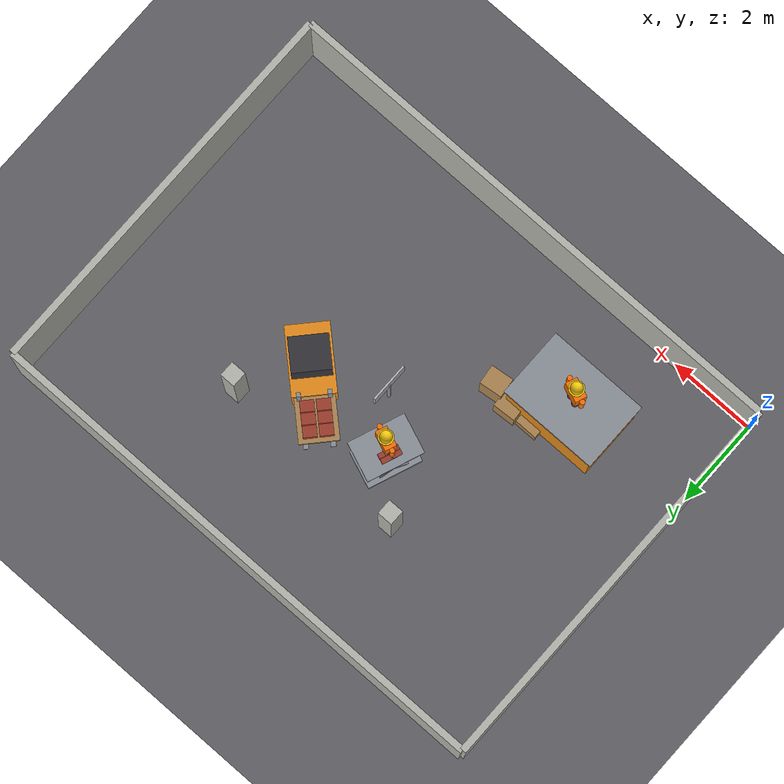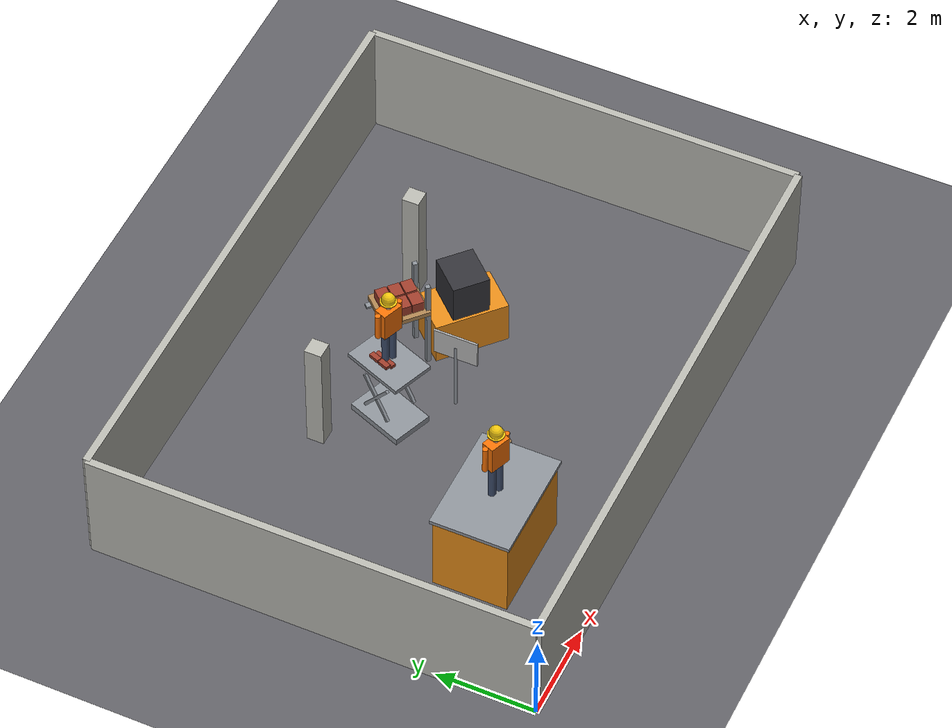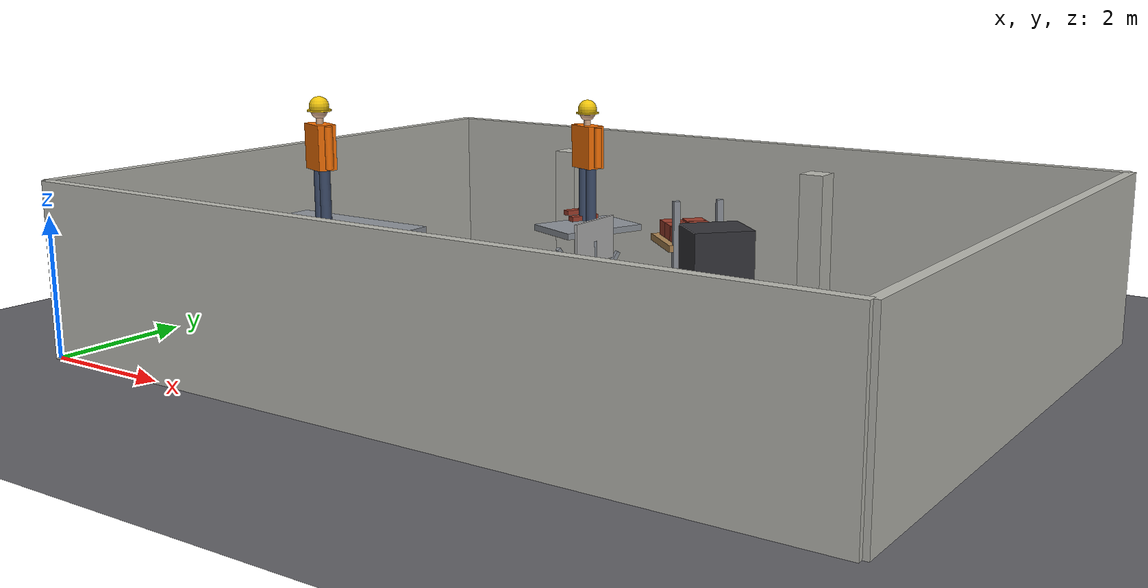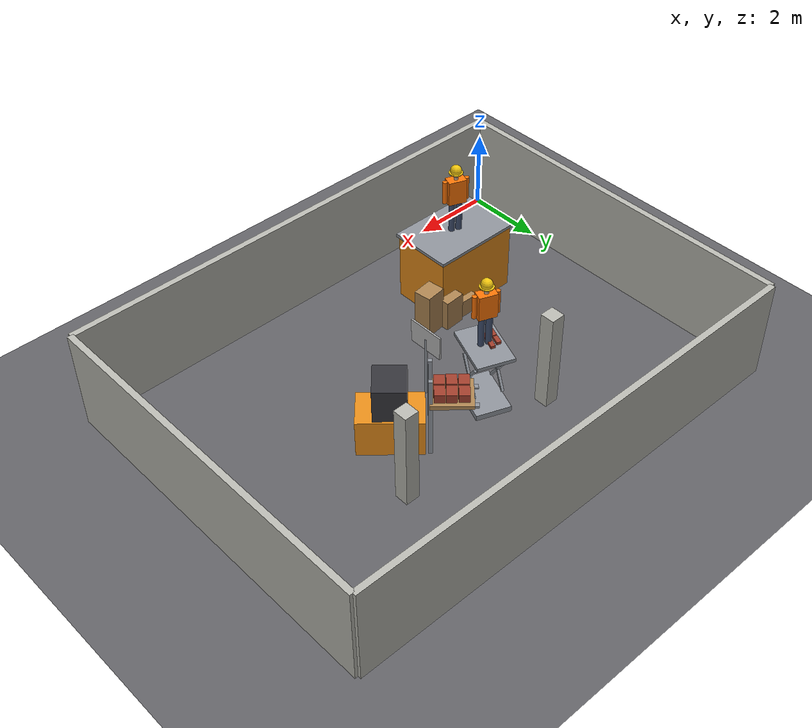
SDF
<sdf version="1.6">
 <world name="construction_lab_C">
  <model name="ground">
   <static>1</static>
   <link name="ground_link">
    <collision name="ground_col">
     <geometry><plane><normal>0 0 1</normal><size>60 60</size></plane></geometry>
     <surface><friction><ode><mu>0.9</mu><mu2>0.9</mu2></ode></friction></surface>
    </collision>
    <visual name="ground_vis">
     <geometry><plane><normal>0 0 1</normal><size>60 60</size></plane></geometry>
     <material><ambient>0.30 0.30 0.32 1</ambient><diffuse>0.38 0.38 0.40 1</diffuse></material>
    </visual>
   </link>
  </model>
  <model name="lab_shell">
   <static>1</static>
   <link name="wall_n">
    <pose>6 9 1.25 0 0 0</pose>
    <gravity>0</gravity>
    <collision name="wall_n_col"><geometry><box><size>12 0.15 2.5</size></box></geometry></collision>
    <visual name="wall_n_vis">
     <geometry><box><size>12 0.15 2.5</size></box></geometry>
     <material>
      <ambient>0.72 0.72 0.69 1</ambient>
      <diffuse>0.72 0.72 0.69 1</diffuse>
      <specular>0.1 0.1 0.1 1</specular>
     </material>
    </visual>
   </link>
   <link name="wall_s">
    <pose>6 0 1.25 0 0 0</pose>
    <gravity>0</gravity>
    <collision name="wall_s_col"><geometry><box><size>12 0.15 2.5</size></box></geometry></collision>
    <visual name="wall_s_vis">
     <geometry><box><size>12 0.15 2.5</size></box></geometry>
     <material>
      <ambient>0.72 0.72 0.69 1</ambient>
      <diffuse>0.72 0.72 0.69 1</diffuse>
      <specular>0.1 0.1 0.1 1</specular>
     </material>
    </visual>
   </link>
   <link name="wall_e">
    <pose>12 4.5 1.25 0 0 0</pose>
    <gravity>0</gravity>
    <collision name="wall_e_col"><geometry><box><size>0.15 9 2.5</size></box></geometry></collision>
    <visual name="wall_e_vis">
     <geometry><box><size>0.15 9 2.5</size></box></geometry>
     <material>
      <ambient>0.72 0.72 0.69 1</ambient>
      <diffuse>0.72 0.72 0.69 1</diffuse>
      <specular>0.1 0.1 0.1 1</specular>
     </material>
    </visual>
   </link>
   <link name="wall_w">
    <pose>0 4.5 1.25 0 0 0</pose>
    <gravity>0</gravity>
    <collision name="wall_w_col"><geometry><box><size>0.15 9 2.5</size></box></geometry></collision>
    <visual name="wall_w_vis">
     <geometry><box><size>0.15 9 2.5</size></box></geometry>
     <material>
      <ambient>0.72 0.72 0.69 1</ambient>
      <diffuse>0.72 0.72 0.69 1</diffuse>
      <specular>0.1 0.1 0.1 1</specular>
     </material>
    </visual>
   </link>
   <link name="column_0">
    <pose>4.2 6.4 1.25 0 0 0</pose>
    <gravity>0</gravity>
    <collision name="column_0_col"><geometry><box><size>0.35 0.35 2.5</size></box></geometry></collision>
    <visual name="column_0_vis">
     <geometry><box><size>0.35 0.35 2.5</size></box></geometry>
     <material>
      <ambient>0.72 0.72 0.69 1</ambient>
      <diffuse>0.72 0.72 0.69 1</diffuse>
      <specular>0.1 0.1 0.1 1</specular>
     </material>
    </visual>
   </link>
   <link name="column_1">
    <pose>8.4 6.4 1.25 0 0 0</pose>
    <gravity>0</gravity>
    <collision name="column_1_col"><geometry><box><size>0.35 0.35 2.5</size></box></geometry></collision>
    <visual name="column_1_vis">
     <geometry><box><size>0.35 0.35 2.5</size></box></geometry>
     <material>
      <ambient>0.72 0.72 0.69 1</ambient>
      <diffuse>0.72 0.72 0.69 1</diffuse>
      <specular>0.1 0.1 0.1 1</specular>
     </material>
    </visual>
   </link>
  </model>
  <model name="safety_signs">
   <static>1</static>
   <link name="SGN_C1_sign">
    <pose>6 4.4 1.6 0 0 3.1416</pose>
    <gravity>0</gravity>
    <collision name="SGN_C1_sign_col"><geometry><box><size>0.04 0.90 0.60</size></box></geometry></collision>
    <visual name="SGN_C1_sign_vis">
     <geometry><box><size>0.04 0.90 0.60</size></box></geometry>
     <material>
      <script>
       <uri>model://materials/scripts</uri>
       <uri>model://materials/textures</uri>
       <name>Go2Sim/SGN_C1</name>
      </script>
     </material>
    </visual>
   </link>
   <link name="SGN_C1_post">
    <pose>6 4.4 0.8 0 0 0</pose>
    <gravity>0</gravity>
    <collision name="SGN_C1_post_col">
     <geometry><cylinder><radius>0.035</radius><length>1.6</length></cylinder></geometry>
    </collision>
    <visual name="SGN_C1_post_vis">
     <geometry><cylinder><radius>0.035</radius><length>1.6</length></cylinder></geometry>
     <material>
      <ambient>0.55 0.57 0.6 1</ambient>
      <diffuse>0.55 0.57 0.6 1</diffuse>
      <specular>0.1 0.1 0.1 1</specular>
     </material>
    </visual>
   </link>
  </model>
  <model name="hazard_C1">
   <static>1</static>
   <link name="hC1_large_machine_base">
    <pose>3 2.2 0.875 0 0 0</pose>
    <gravity>0</gravity>
    <collision name="hC1_large_machine_base_col">
     <geometry><box><size>2.2 1.5 1.75</size></box></geometry>
    </collision>
    <visual name="hC1_large_machine_base_vis">
     <geometry><box><size>2.2 1.5 1.75</size></box></geometry>
     <material>
      <ambient>0.9 0.55 0.1 1</ambient>
      <diffuse>0.9 0.55 0.1 1</diffuse>
      <specular>0.1 0.1 0.1 1</specular>
     </material>
    </visual>
   </link>
   <link name="hC1_large_machine_deck">
    <pose>3 2.2 1.79 0 0 0</pose>
    <gravity>0</gravity>
    <collision name="hC1_large_machine_deck_col">
     <geometry><box><size>2.3 1.6 0.08</size></box></geometry>
    </collision>
    <visual name="hC1_large_machine_deck_vis">
     <geometry><box><size>2.3 1.6 0.08</size></box></geometry>
     <material>
      <ambient>0.55 0.57 0.6 1</ambient>
      <diffuse>0.55 0.57 0.6 1</diffuse>
      <specular>0.1 0.1 0.1 1</specular>
     </material>
    </visual>
   </link>
   <link name="hC1_worker_on_machine_leg_l">
    <pose>2.91612 2.23261 2.23 0 0 0</pose>
    <gravity>0</gravity>
    <collision name="hC1_worker_on_machine_leg_l_col">
     <geometry><cylinder><radius>0.075</radius><length>0.8</length></cylinder></geometry>
    </collision>
    <visual name="hC1_worker_on_machine_leg_l_vis">
     <geometry><cylinder><radius>0.075</radius><length>0.8</length></cylinder></geometry>
     <material>
      <ambient>0.24 0.3 0.42 1</ambient>
      <diffuse>0.24 0.3 0.42 1</diffuse>
      <specular>0.1 0.1 0.1 1</specular>
     </material>
    </visual>
   </link>
   <link name="hC1_worker_on_machine_leg_r">
    <pose>3.08388 2.16739 2.23 0 0 0</pose>
    <gravity>0</gravity>
    <collision name="hC1_worker_on_machine_leg_r_col">
     <geometry><cylinder><radius>0.075</radius><length>0.8</length></cylinder></geometry>
    </collision>
    <visual name="hC1_worker_on_machine_leg_r_vis">
     <geometry><cylinder><radius>0.075</radius><length>0.8</length></cylinder></geometry>
     <material>
      <ambient>0.24 0.3 0.42 1</ambient>
      <diffuse>0.24 0.3 0.42 1</diffuse>
      <specular>0.1 0.1 0.1 1</specular>
     </material>
    </visual>
   </link>
   <link name="hC1_worker_on_machine_torso">
    <pose>3 2.2 2.94 0 0 1.2</pose>
    <gravity>0</gravity>
    <collision name="hC1_worker_on_machine_torso_col">
     <geometry><box><size>0.26 0.44 0.62</size></box></geometry>
    </collision>
    <visual name="hC1_worker_on_machine_torso_vis">
     <geometry><box><size>0.26 0.44 0.62</size></box></geometry>
     <material>
      <ambient>0.98 0.45 0.02 1</ambient>
      <diffuse>0.98 0.45 0.02 1</diffuse>
      <specular>0.1 0.1 0.1 1</specular>
     </material>
    </visual>
   </link>
   <link name="hC1_worker_on_machine_arm0">
    <pose>3.25165 2.10216 2.95 0 0 0</pose>
    <gravity>0</gravity>
    <collision name="hC1_worker_on_machine_arm0_col">
     <geometry><cylinder><radius>0.055</radius><length>0.58</length></cylinder></geometry>
    </collision>
    <visual name="hC1_worker_on_machine_arm0_vis">
     <geometry><cylinder><radius>0.055</radius><length>0.58</length></cylinder></geometry>
     <material>
      <ambient>0.98 0.45 0.02 1</ambient>
      <diffuse>0.98 0.45 0.02 1</diffuse>
      <specular>0.1 0.1 0.1 1</specular>
     </material>
    </visual>
   </link>
   <link name="hC1_worker_on_machine_arm1">
    <pose>2.74835 2.29784 2.95 0 0 0</pose>
    <gravity>0</gravity>
    <collision name="hC1_worker_on_machine_arm1_col">
     <geometry><cylinder><radius>0.055</radius><length>0.58</length></cylinder></geometry>
    </collision>
    <visual name="hC1_worker_on_machine_arm1_vis">
     <geometry><cylinder><radius>0.055</radius><length>0.58</length></cylinder></geometry>
     <material>
      <ambient>0.98 0.45 0.02 1</ambient>
      <diffuse>0.98 0.45 0.02 1</diffuse>
      <specular>0.1 0.1 0.1 1</specular>
     </material>
    </visual>
   </link>
   <link name="hC1_worker_on_machine_neck">
    <pose>3 2.2 3.29 0 0 0</pose>
    <gravity>0</gravity>
    <collision name="hC1_worker_on_machine_neck_col">
     <geometry><cylinder><radius>0.05</radius><length>0.09</length></cylinder></geometry>
    </collision>
    <visual name="hC1_worker_on_machine_neck_vis">
     <geometry><cylinder><radius>0.05</radius><length>0.09</length></cylinder></geometry>
     <material>
      <ambient>0.85 0.68 0.55 1</ambient>
      <diffuse>0.85 0.68 0.55 1</diffuse>
      <specular>0.1 0.1 0.1 1</specular>
     </material>
    </visual>
   </link>
   <link name="hC1_worker_on_machine_head">
    <pose>3 2.2 3.43 0 0 0</pose>
    <gravity>0</gravity>
    <collision name="hC1_worker_on_machine_head_col">
     <geometry><sphere><radius>0.115</radius></sphere></geometry>
    </collision>
    <visual name="hC1_worker_on_machine_head_vis">
     <geometry><sphere><radius>0.115</radius></sphere></geometry>
     <material>
      <ambient>0.85 0.68 0.55 1</ambient>
      <diffuse>0.85 0.68 0.55 1</diffuse>
      <specular>0.1 0.1 0.1 1</specular>
     </material>
    </visual>
   </link>
   <link name="hC1_worker_on_machine_hat">
    <pose>3 2.2 3.485 0 0 0</pose>
    <gravity>0</gravity>
    <collision name="hC1_worker_on_machine_hat_col">
     <geometry><sphere><radius>0.135</radius></sphere></geometry>
    </collision>
    <visual name="hC1_worker_on_machine_hat_vis">
     <geometry><sphere><radius>0.135</radius></sphere></geometry>
     <material>
      <ambient>0.95 0.78 0.05 1</ambient>
      <diffuse>0.95 0.78 0.05 1</diffuse>
      <specular>0.1 0.1 0.1 1</specular>
     </material>
    </visual>
   </link>
   <link name="hC1_worker_on_machine_brim">
    <pose>3 2.2 3.43 0 0 0</pose>
    <gravity>0</gravity>
    <collision name="hC1_worker_on_machine_brim_col">
     <geometry><cylinder><radius>0.165</radius><length>0.02</length></cylinder></geometry>
    </collision>
    <visual name="hC1_worker_on_machine_brim_vis">
     <geometry><cylinder><radius>0.165</radius><length>0.02</length></cylinder></geometry>
     <material>
      <ambient>0.95 0.78 0.05 1</ambient>
      <diffuse>0.95 0.78 0.05 1</diffuse>
      <specular>0.1 0.1 0.1 1</specular>
     </material>
    </visual>
   </link>
  </model>
  <model name="hazard_C2">
   <static>1</static>
   <link name="hC2_lift_table_base">
    <pose>5.2 5.4 0.07 0 0 1.2</pose>
    <gravity>0</gravity>
    <collision name="hC2_lift_table_base_col">
     <geometry><box><size>1.25 0.85 0.14</size></box></geometry>
    </collision>
    <visual name="hC2_lift_table_base_vis">
     <geometry><box><size>1.25 0.85 0.14</size></box></geometry>
     <material>
      <ambient>0.55 0.57 0.6 1</ambient>
      <diffuse>0.55 0.57 0.6 1</diffuse>
      <specular>0.1 0.1 0.1 1</specular>
     </material>
    </visual>
   </link>
   <link name="hC2_lift_table_sc00">
    <pose>5.51689 5.2768 0.775 0 0.95 1.2</pose>
    <gravity>0</gravity>
    <collision name="hC2_lift_table_sc00_col">
     <geometry><box><size>1.05 0.06 0.06</size></box></geometry>
    </collision>
    <visual name="hC2_lift_table_sc00_vis">
     <geometry><box><size>1.05 0.06 0.06</size></box></geometry>
     <material>
      <ambient>0.55 0.57 0.6 1</ambient>
      <diffuse>0.55 0.57 0.6 1</diffuse>
      <specular>0.1 0.1 0.1 1</specular>
     </material>
    </visual>
   </link>
   <link name="hC2_lift_table_sc01">
    <pose>5.51689 5.2768 0.775 0 -0.95 1.2</pose>
    <gravity>0</gravity>
    <collision name="hC2_lift_table_sc01_col">
     <geometry><box><size>1.05 0.06 0.06</size></box></geometry>
    </collision>
    <visual name="hC2_lift_table_sc01_vis">
     <geometry><box><size>1.05 0.06 0.06</size></box></geometry>
     <material>
      <ambient>0.55 0.57 0.6 1</ambient>
      <diffuse>0.55 0.57 0.6 1</diffuse>
      <specular>0.1 0.1 0.1 1</specular>
     </material>
    </visual>
   </link>
   <link name="hC2_lift_table_sc10">
    <pose>4.88311 5.5232 0.775 0 0.95 1.2</pose>
    <gravity>0</gravity>
    <collision name="hC2_lift_table_sc10_col">
     <geometry><box><size>1.05 0.06 0.06</size></box></geometry>
    </collision>
    <visual name="hC2_lift_table_sc10_vis">
     <geometry><box><size>1.05 0.06 0.06</size></box></geometry>
     <material>
      <ambient>0.55 0.57 0.6 1</ambient>
      <diffuse>0.55 0.57 0.6 1</diffuse>
      <specular>0.1 0.1 0.1 1</specular>
     </material>
    </visual>
   </link>
   <link name="hC2_lift_table_sc11">
    <pose>4.88311 5.5232 0.775 0 -0.95 1.2</pose>
    <gravity>0</gravity>
    <collision name="hC2_lift_table_sc11_col">
     <geometry><box><size>1.05 0.06 0.06</size></box></geometry>
    </collision>
    <visual name="hC2_lift_table_sc11_vis">
     <geometry><box><size>1.05 0.06 0.06</size></box></geometry>
     <material>
      <ambient>0.55 0.57 0.6 1</ambient>
      <diffuse>0.55 0.57 0.6 1</diffuse>
      <specular>0.1 0.1 0.1 1</specular>
     </material>
    </visual>
   </link>
   <link name="hC2_lift_table_platform">
    <pose>5.2 5.4 1.55 0 0 1.2</pose>
    <gravity>0</gravity>
    <collision name="hC2_lift_table_platform_col">
     <geometry><box><size>1.3 0.9 0.09</size></box></geometry>
    </collision>
    <visual name="hC2_lift_table_platform_vis">
     <geometry><box><size>1.3 0.9 0.09</size></box></geometry>
     <material>
      <ambient>0.55 0.57 0.6 1</ambient>
      <diffuse>0.55 0.57 0.6 1</diffuse>
      <specular>0.1 0.1 0.1 1</specular>
     </material>
    </visual>
   </link>
   <link name="hC2_worker_on_lift_leg_l">
    <pose>5.11612 5.43261 2.04 0 0 0</pose>
    <gravity>0</gravity>
    <collision name="hC2_worker_on_lift_leg_l_col">
     <geometry><cylinder><radius>0.075</radius><length>0.8</length></cylinder></geometry>
    </collision>
    <visual name="hC2_worker_on_lift_leg_l_vis">
     <geometry><cylinder><radius>0.075</radius><length>0.8</length></cylinder></geometry>
     <material>
      <ambient>0.24 0.3 0.42 1</ambient>
      <diffuse>0.24 0.3 0.42 1</diffuse>
      <specular>0.1 0.1 0.1 1</specular>
     </material>
    </visual>
   </link>
   <link name="hC2_worker_on_lift_leg_r">
    <pose>5.28388 5.36739 2.04 0 0 0</pose>
    <gravity>0</gravity>
    <collision name="hC2_worker_on_lift_leg_r_col">
     <geometry><cylinder><radius>0.075</radius><length>0.8</length></cylinder></geometry>
    </collision>
    <visual name="hC2_worker_on_lift_leg_r_vis">
     <geometry><cylinder><radius>0.075</radius><length>0.8</length></cylinder></geometry>
     <material>
      <ambient>0.24 0.3 0.42 1</ambient>
      <diffuse>0.24 0.3 0.42 1</diffuse>
      <specular>0.1 0.1 0.1 1</specular>
     </material>
    </visual>
   </link>
   <link name="hC2_worker_on_lift_torso">
    <pose>5.2 5.4 2.75 0 0 1.2</pose>
    <gravity>0</gravity>
    <collision name="hC2_worker_on_lift_torso_col">
     <geometry><box><size>0.26 0.44 0.62</size></box></geometry>
    </collision>
    <visual name="hC2_worker_on_lift_torso_vis">
     <geometry><box><size>0.26 0.44 0.62</size></box></geometry>
     <material>
      <ambient>0.98 0.45 0.02 1</ambient>
      <diffuse>0.98 0.45 0.02 1</diffuse>
      <specular>0.1 0.1 0.1 1</specular>
     </material>
    </visual>
   </link>
   <link name="hC2_worker_on_lift_arm0">
    <pose>5.45165 5.30216 2.76 0 0 0</pose>
    <gravity>0</gravity>
    <collision name="hC2_worker_on_lift_arm0_col">
     <geometry><cylinder><radius>0.055</radius><length>0.58</length></cylinder></geometry>
    </collision>
    <visual name="hC2_worker_on_lift_arm0_vis">
     <geometry><cylinder><radius>0.055</radius><length>0.58</length></cylinder></geometry>
     <material>
      <ambient>0.98 0.45 0.02 1</ambient>
      <diffuse>0.98 0.45 0.02 1</diffuse>
      <specular>0.1 0.1 0.1 1</specular>
     </material>
    </visual>
   </link>
   <link name="hC2_worker_on_lift_arm1">
    <pose>4.94835 5.49784 2.76 0 0 0</pose>
    <gravity>0</gravity>
    <collision name="hC2_worker_on_lift_arm1_col">
     <geometry><cylinder><radius>0.055</radius><length>0.58</length></cylinder></geometry>
    </collision>
    <visual name="hC2_worker_on_lift_arm1_vis">
     <geometry><cylinder><radius>0.055</radius><length>0.58</length></cylinder></geometry>
     <material>
      <ambient>0.98 0.45 0.02 1</ambient>
      <diffuse>0.98 0.45 0.02 1</diffuse>
      <specular>0.1 0.1 0.1 1</specular>
     </material>
    </visual>
   </link>
   <link name="hC2_worker_on_lift_neck">
    <pose>5.2 5.4 3.1 0 0 0</pose>
    <gravity>0</gravity>
    <collision name="hC2_worker_on_lift_neck_col">
     <geometry><cylinder><radius>0.05</radius><length>0.09</length></cylinder></geometry>
    </collision>
    <visual name="hC2_worker_on_lift_neck_vis">
     <geometry><cylinder><radius>0.05</radius><length>0.09</length></cylinder></geometry>
     <material>
      <ambient>0.85 0.68 0.55 1</ambient>
      <diffuse>0.85 0.68 0.55 1</diffuse>
      <specular>0.1 0.1 0.1 1</specular>
     </material>
    </visual>
   </link>
   <link name="hC2_worker_on_lift_head">
    <pose>5.2 5.4 3.24 0 0 0</pose>
    <gravity>0</gravity>
    <collision name="hC2_worker_on_lift_head_col">
     <geometry><sphere><radius>0.115</radius></sphere></geometry>
    </collision>
    <visual name="hC2_worker_on_lift_head_vis">
     <geometry><sphere><radius>0.115</radius></sphere></geometry>
     <material>
      <ambient>0.85 0.68 0.55 1</ambient>
      <diffuse>0.85 0.68 0.55 1</diffuse>
      <specular>0.1 0.1 0.1 1</specular>
     </material>
    </visual>
   </link>
   <link name="hC2_worker_on_lift_hat">
    <pose>5.2 5.4 3.295 0 0 0</pose>
    <gravity>0</gravity>
    <collision name="hC2_worker_on_lift_hat_col">
     <geometry><sphere><radius>0.135</radius></sphere></geometry>
    </collision>
    <visual name="hC2_worker_on_lift_hat_vis">
     <geometry><sphere><radius>0.135</radius></sphere></geometry>
     <material>
      <ambient>0.95 0.78 0.05 1</ambient>
      <diffuse>0.95 0.78 0.05 1</diffuse>
      <specular>0.1 0.1 0.1 1</specular>
     </material>
    </visual>
   </link>
   <link name="hC2_worker_on_lift_brim">
    <pose>5.2 5.4 3.24 0 0 0</pose>
    <gravity>0</gravity>
    <collision name="hC2_worker_on_lift_brim_col">
     <geometry><cylinder><radius>0.165</radius><length>0.02</length></cylinder></geometry>
    </collision>
    <visual name="hC2_worker_on_lift_brim_vis">
     <geometry><cylinder><radius>0.165</radius><length>0.02</length></cylinder></geometry>
     <material>
      <ambient>0.95 0.78 0.05 1</ambient>
      <diffuse>0.95 0.78 0.05 1</diffuse>
      <specular>0.1 0.1 0.1 1</specular>
     </material>
    </visual>
   </link>
  </model>
  <model name="hazard_C3">
   <static>1</static>
   <link name="hC3_stacked_crates_as_step_cr0">
    <pose>3.4 2.9 0.225 0 0 0</pose>
    <gravity>0</gravity>
    <collision name="hC3_stacked_crates_as_step_cr0_col">
     <geometry><box><size>0.52 0.44 0.45</size></box></geometry>
    </collision>
    <visual name="hC3_stacked_crates_as_step_cr0_vis">
     <geometry><box><size>0.52 0.44 0.45</size></box></geometry>
     <material>
      <ambient>0.68 0.52 0.32 1</ambient>
      <diffuse>0.68 0.52 0.32 1</diffuse>
      <specular>0.1 0.1 0.1 1</specular>
     </material>
    </visual>
   </link>
   <link name="hC3_stacked_crates_as_step_cr1">
    <pose>3.95 2.98 0.4 0 0 0.06</pose>
    <gravity>0</gravity>
    <collision name="hC3_stacked_crates_as_step_cr1_col">
     <geometry><box><size>0.52 0.44 0.8</size></box></geometry>
    </collision>
    <visual name="hC3_stacked_crates_as_step_cr1_vis">
     <geometry><box><size>0.52 0.44 0.8</size></box></geometry>
     <material>
      <ambient>0.68 0.52 0.32 1</ambient>
      <diffuse>0.68 0.52 0.32 1</diffuse>
      <specular>0.1 0.1 0.1 1</specular>
     </material>
    </visual>
   </link>
   <link name="hC3_stacked_crates_as_step_cr2">
    <pose>4.45 2.85 0.575 0 0 0.12</pose>
    <gravity>0</gravity>
    <collision name="hC3_stacked_crates_as_step_cr2_col">
     <geometry><box><size>0.52 0.44 1.15</size></box></geometry>
    </collision>
    <visual name="hC3_stacked_crates_as_step_cr2_vis">
     <geometry><box><size>0.52 0.44 1.15</size></box></geometry>
     <material>
      <ambient>0.68 0.52 0.32 1</ambient>
      <diffuse>0.68 0.52 0.32 1</diffuse>
      <specular>0.1 0.1 0.1 1</specular>
     </material>
    </visual>
   </link>
  </model>
  <model name="hazard_C4">
   <static>1</static>
   <link name="hC4_bricks_on_platform_pb0">
    <pose>5.05726 5.32554 1.68 0 0 1.2</pose>
    <gravity>0</gravity>
    <collision name="hC4_bricks_on_platform_pb0_col">
     <geometry><box><size>0.22 0.11 0.07</size></box></geometry>
    </collision>
    <visual name="hC4_bricks_on_platform_pb0_vis">
     <geometry><box><size>0.22 0.11 0.07</size></box></geometry>
     <material>
      <ambient>0.62 0.24 0.17 1</ambient>
      <diffuse>0.62 0.24 0.17 1</diffuse>
      <specular>0.1 0.1 0.1 1</specular>
     </material>
    </visual>
   </link>
   <link name="hC4_bricks_on_platform_pb1">
    <pose>5.14422 5.54923 1.68 0 0 1.2</pose>
    <gravity>0</gravity>
    <collision name="hC4_bricks_on_platform_pb1_col">
     <geometry><box><size>0.22 0.11 0.07</size></box></geometry>
    </collision>
    <visual name="hC4_bricks_on_platform_pb1_vis">
     <geometry><box><size>0.22 0.11 0.07</size></box></geometry>
     <material>
      <ambient>0.62 0.24 0.17 1</ambient>
      <diffuse>0.62 0.24 0.17 1</diffuse>
      <specular>0.1 0.1 0.1 1</specular>
     </material>
    </visual>
   </link>
   <link name="hC4_bricks_on_platform_pb2">
    <pose>4.93609 5.37265 1.755 0 0 1.2</pose>
    <gravity>0</gravity>
    <collision name="hC4_bricks_on_platform_pb2_col">
     <geometry><box><size>0.22 0.11 0.07</size></box></geometry>
    </collision>
    <visual name="hC4_bricks_on_platform_pb2_vis">
     <geometry><box><size>0.22 0.11 0.07</size></box></geometry>
     <material>
      <ambient>0.62 0.24 0.17 1</ambient>
      <diffuse>0.62 0.24 0.17 1</diffuse>
      <specular>0.1 0.1 0.1 1</specular>
     </material>
    </visual>
   </link>
   <link name="hC4_bricks_on_platform_pb3">
    <pose>5.02306 5.59634 1.755 0 0 1.2</pose>
    <gravity>0</gravity>
    <collision name="hC4_bricks_on_platform_pb3_col">
     <geometry><box><size>0.22 0.11 0.07</size></box></geometry>
    </collision>
    <visual name="hC4_bricks_on_platform_pb3_vis">
     <geometry><box><size>0.22 0.11 0.07</size></box></geometry>
     <material>
      <ambient>0.62 0.24 0.17 1</ambient>
      <diffuse>0.62 0.24 0.17 1</diffuse>
      <specular>0.1 0.1 0.1 1</specular>
     </material>
    </visual>
   </link>
  </model>
  <model name="hazard_C5">
   <static>1</static>
   <link name="hC5_forklift_raised_load_body">
    <pose>7.6 5 0.55 0 0 2.4</pose>
    <gravity>0</gravity>
    <collision name="hC5_forklift_raised_load_body_col">
     <geometry><box><size>1.5 0.95 0.95</size></box></geometry>
    </collision>
    <visual name="hC5_forklift_raised_load_body_vis">
     <geometry><box><size>1.5 0.95 0.95</size></box></geometry>
     <material>
      <ambient>0.9 0.55 0.1 1</ambient>
      <diffuse>0.9 0.55 0.1 1</diffuse>
      <specular>0.1 0.1 0.1 1</specular>
     </material>
    </visual>
   </link>
   <link name="hC5_forklift_raised_load_cab">
    <pose>7.6 5 1.45 0 0 2.4</pose>
    <gravity>0</gravity>
    <collision name="hC5_forklift_raised_load_cab_col">
     <geometry><box><size>0.75 0.85 0.85</size></box></geometry>
    </collision>
    <visual name="hC5_forklift_raised_load_cab_vis">
     <geometry><box><size>0.75 0.85 0.85</size></box></geometry>
     <material>
      <ambient>0.2 0.2 0.22 1</ambient>
      <diffuse>0.2 0.2 0.22 1</diffuse>
      <specular>0.1 0.1 0.1 1</specular>
     </material>
    </visual>
   </link>
   <link name="hC5_forklift_raised_load_mast0">
    <pose>7.18936 5.81011 1.05 0 0 2.4</pose>
    <gravity>0</gravity>
    <collision name="hC5_forklift_raised_load_mast0_col">
     <geometry><box><size>0.09 0.09 2.1</size></box></geometry>
    </collision>
    <visual name="hC5_forklift_raised_load_mast0_vis">
     <geometry><box><size>0.09 0.09 2.1</size></box></geometry>
     <material>
      <ambient>0.55 0.57 0.6 1</ambient>
      <diffuse>0.55 0.57 0.6 1</diffuse>
      <specular>0.1 0.1 0.1 1</specular>
     </material>
    </visual>
   </link>
   <link name="hC5_forklift_raised_load_mast1">
    <pose>6.75707 5.33818 1.05 0 0 2.4</pose>
    <gravity>0</gravity>
    <collision name="hC5_forklift_raised_load_mast1_col">
     <geometry><box><size>0.09 0.09 2.1</size></box></geometry>
    </collision>
    <visual name="hC5_forklift_raised_load_mast1_vis">
     <geometry><box><size>0.09 0.09 2.1</size></box></geometry>
     <material>
      <ambient>0.55 0.57 0.6 1</ambient>
      <diffuse>0.55 0.57 0.6 1</diffuse>
      <specular>0.1 0.1 0.1 1</specular>
     </material>
    </visual>
   </link>
   <link name="hC5_forklift_raised_load_fork0">
    <pose>6.79365 6.11835 1.35 0 0 2.4</pose>
    <gravity>0</gravity>
    <collision name="hC5_forklift_raised_load_fork0_col">
     <geometry><box><size>1.05 0.11 0.045</size></box></geometry>
    </collision>
    <visual name="hC5_forklift_raised_load_fork0_vis">
     <geometry><box><size>1.05 0.11 0.045</size></box></geometry>
     <material>
      <ambient>0.55 0.57 0.6 1</ambient>
      <diffuse>0.55 0.57 0.6 1</diffuse>
      <specular>0.1 0.1 0.1 1</specular>
     </material>
    </visual>
   </link>
   <link name="hC5_forklift_raised_load_fork1">
    <pose>6.41539 5.70541 1.35 0 0 2.4</pose>
    <gravity>0</gravity>
    <collision name="hC5_forklift_raised_load_fork1_col">
     <geometry><box><size>1.05 0.11 0.045</size></box></geometry>
    </collision>
    <visual name="hC5_forklift_raised_load_fork1_vis">
     <geometry><box><size>1.05 0.11 0.045</size></box></geometry>
     <material>
      <ambient>0.55 0.57 0.6 1</ambient>
      <diffuse>0.55 0.57 0.6 1</diffuse>
      <specular>0.1 0.1 0.1 1</specular>
     </material>
    </visual>
   </link>
   <link name="hC5_forklift_raised_load_pallet">
    <pose>6.64139 5.8781 1.42 0 0 2.4</pose>
    <gravity>0</gravity>
    <collision name="hC5_forklift_raised_load_pallet_col">
     <geometry><box><size>0.95 0.85 0.1</size></box></geometry>
    </collision>
    <visual name="hC5_forklift_raised_load_pallet_vis">
     <geometry><box><size>0.95 0.85 0.1</size></box></geometry>
     <material>
      <ambient>0.68 0.52 0.32 1</ambient>
      <diffuse>0.68 0.52 0.32 1</diffuse>
      <specular>0.1 0.1 0.1 1</specular>
     </material>
    </visual>
   </link>
   <link name="hC5_forklift_raised_load_ld00">
    <pose>6.94794 5.82784 1.58 0 0 2.4</pose>
    <gravity>0</gravity>
    <collision name="hC5_forklift_raised_load_ld00_col">
     <geometry><box><size>0.24 0.3 0.22</size></box></geometry>
    </collision>
    <visual name="hC5_forklift_raised_load_ld00_vis">
     <geometry><box><size>0.24 0.3 0.22</size></box></geometry>
     <material>
      <ambient>0.62 0.24 0.17 1</ambient>
      <diffuse>0.62 0.24 0.17 1</diffuse>
      <specular>0.1 0.1 0.1 1</specular>
     </material>
    </visual>
   </link>
   <link name="hC5_forklift_raised_load_ld01">
    <pose>6.71828 5.57712 1.58 0 0 2.4</pose>
    <gravity>0</gravity>
    <collision name="hC5_forklift_raised_load_ld01_col">
     <geometry><box><size>0.24 0.3 0.22</size></box></geometry>
    </collision>
    <visual name="hC5_forklift_raised_load_ld01_vis">
     <geometry><box><size>0.24 0.3 0.22</size></box></geometry>
     <material>
      <ambient>0.62 0.24 0.17 1</ambient>
      <diffuse>0.62 0.24 0.17 1</diffuse>
      <specular>0.1 0.1 0.1 1</specular>
     </material>
    </visual>
   </link>
   <link name="hC5_forklift_raised_load_ld10">
    <pose>6.75622 6.00346 1.58 0 0 2.4</pose>
    <gravity>0</gravity>
    <collision name="hC5_forklift_raised_load_ld10_col">
     <geometry><box><size>0.24 0.3 0.22</size></box></geometry>
    </collision>
    <visual name="hC5_forklift_raised_load_ld10_vis">
     <geometry><box><size>0.24 0.3 0.22</size></box></geometry>
     <material>
      <ambient>0.62 0.24 0.17 1</ambient>
      <diffuse>0.62 0.24 0.17 1</diffuse>
      <specular>0.1 0.1 0.1 1</specular>
     </material>
    </visual>
   </link>
   <link name="hC5_forklift_raised_load_ld11">
    <pose>6.52656 5.75275 1.58 0 0 2.4</pose>
    <gravity>0</gravity>
    <collision name="hC5_forklift_raised_load_ld11_col">
     <geometry><box><size>0.24 0.3 0.22</size></box></geometry>
    </collision>
    <visual name="hC5_forklift_raised_load_ld11_vis">
     <geometry><box><size>0.24 0.3 0.22</size></box></geometry>
     <material>
      <ambient>0.62 0.24 0.17 1</ambient>
      <diffuse>0.62 0.24 0.17 1</diffuse>
      <specular>0.1 0.1 0.1 1</specular>
     </material>
    </visual>
   </link>
   <link name="hC5_forklift_raised_load_ld20">
    <pose>6.56449 6.17908 1.58 0 0 2.4</pose>
    <gravity>0</gravity>
    <collision name="hC5_forklift_raised_load_ld20_col">
     <geometry><box><size>0.24 0.3 0.22</size></box></geometry>
    </collision>
    <visual name="hC5_forklift_raised_load_ld20_vis">
     <geometry><box><size>0.24 0.3 0.22</size></box></geometry>
     <material>
      <ambient>0.62 0.24 0.17 1</ambient>
      <diffuse>0.62 0.24 0.17 1</diffuse>
      <specular>0.1 0.1 0.1 1</specular>
     </material>
    </visual>
   </link>
   <link name="hC5_forklift_raised_load_ld21">
    <pose>6.33484 5.92837 1.58 0 0 2.4</pose>
    <gravity>0</gravity>
    <collision name="hC5_forklift_raised_load_ld21_col">
     <geometry><box><size>0.24 0.3 0.22</size></box></geometry>
    </collision>
    <visual name="hC5_forklift_raised_load_ld21_vis">
     <geometry><box><size>0.24 0.3 0.22</size></box></geometry>
     <material>
      <ambient>0.62 0.24 0.17 1</ambient>
      <diffuse>0.62 0.24 0.17 1</diffuse>
      <specular>0.1 0.1 0.1 1</specular>
     </material>
    </visual>
   </link>
  </model>
 </world>
</sdf>
